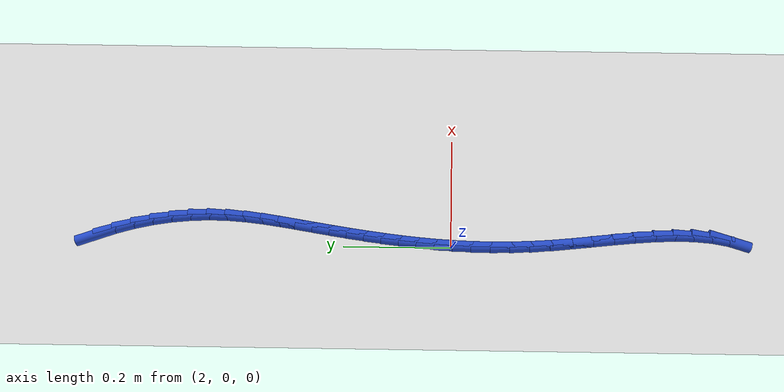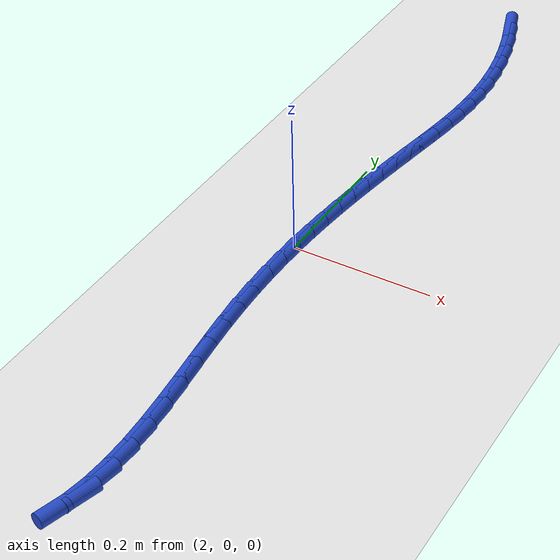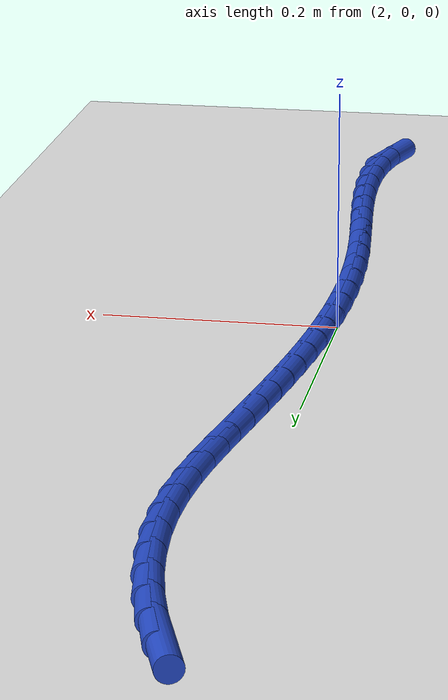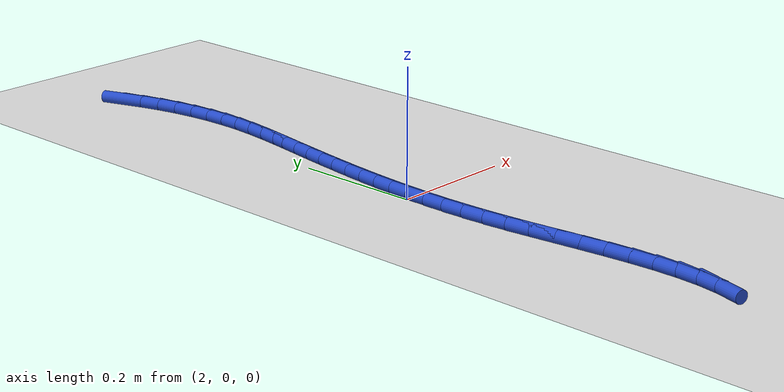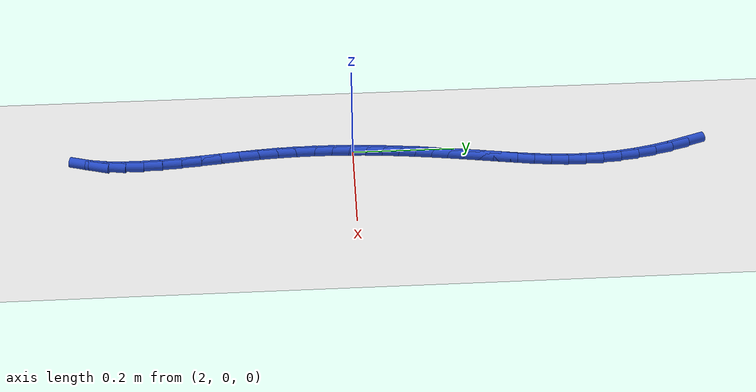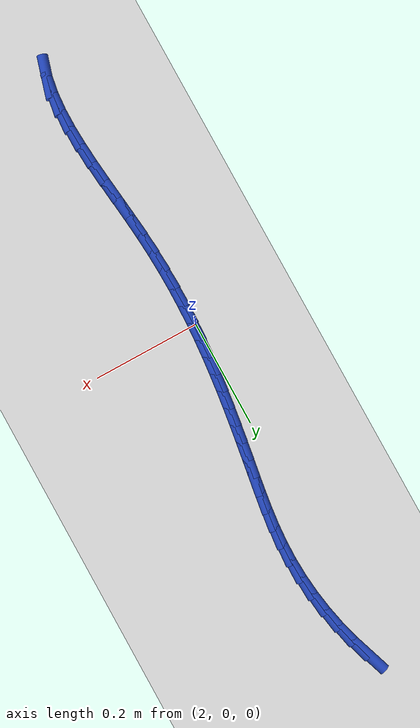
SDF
<sdf version="1.6">
 <world name="default">
  <model name="ground_plane">
   <static>1</static>
   <link name="link">
    <collision name="collision">
     <geometry><plane><normal>0 0 1</normal><size>100 100</size></plane></geometry>
     <surface><friction><ode><mu>100</mu><mu2>50</mu2></ode></friction></surface>
    </collision>
    <visual name="visual">
     <cast_shadows>0</cast_shadows>
     <geometry><plane><normal>0 0 1</normal><size>100 100</size></plane></geometry>
     <material>
      <script><uri>file://media/materials/scripts/gazebo.material</uri><name>Gazebo/WhiteGlow</name></script>
     </material>
    </visual>
   </link>
  </model>
  <model name="line">
   <link name="link_88">
    <pose>2.0164221286010906 0.6550018947222265 0.01 0 1.57 -1.240468622106489</pose>
    <collision name="collision">
     <geometry><cylinder><radius>0.01</radius><length>0.08</length></cylinder></geometry>
    </collision>
    <visual name="visual">
     <material>
      <script><name>Gazebo/Blue</name><uri>file://media/materials/scripts/gazebo.material</uri></script>
     </material>
     <geometry><cylinder><radius>0.01</radius><length>0.08</length></cylinder></geometry>
    </visual>
   </link>
   <link name="link_89">
    <pose>2.0278985567098724 0.6215322904564355 0.01 0 1.57 -1.2999223944673408</pose>
    <collision name="collision">
     <geometry><cylinder><radius>0.01</radius><length>0.08</length></cylinder></geometry>
    </collision>
    <visual name="visual">
     <material>
      <script><name>Gazebo/Blue</name><uri>file://media/materials/scripts/gazebo.material</uri></script>
     </material>
     <geometry><cylinder><radius>0.01</radius><length>0.08</length></cylinder></geometry>
    </visual>
   </link>
   <link name="link_90">
    <pose>2.0374064771883704 0.5872940957433821 0.01 0 1.57 -1.3575590052933633</pose>
    <collision name="collision">
     <geometry><cylinder><radius>0.01</radius><length>0.08</length></cylinder></geometry>
    </collision>
    <visual name="visual">
     <material>
      <script><name>Gazebo/Blue</name><uri>file://media/materials/scripts/gazebo.material</uri></script>
     </material>
     <geometry><cylinder><radius>0.01</radius><length>0.08</length></cylinder></geometry>
    </visual>
   </link>
   <link name="link_91">
    <pose>2.0449311382982183 0.5525428399043462 0.01 0 1.57 -1.4142238051014469</pose>
    <collision name="collision">
     <geometry><cylinder><radius>0.01</radius><length>0.08</length></cylinder></geometry>
    </collision>
    <visual name="visual">
     <material>
      <script><name>Gazebo/Blue</name><uri>file://media/materials/scripts/gazebo.material</uri></script>
     </material>
     <geometry><cylinder><radius>0.01</radius><length>0.08</length></cylinder></geometry>
    </visual>
   </link>
   <link name="link_92">
    <pose>2.050457788301049 0.5175340522606072 0.01 0 1.57 -1.4707654753501485</pose>
    <collision name="collision">
     <geometry><cylinder><radius>0.01</radius><length>0.08</length></cylinder></geometry>
    </collision>
    <visual name="visual">
     <material>
      <script><name>Gazebo/Blue</name><uri>file://media/materials/scripts/gazebo.material</uri></script>
     </material>
     <geometry><cylinder><radius>0.01</radius><length>0.08</length></cylinder></geometry>
    </visual>
   </link>
   <link name="link_93">
    <pose>2.0539716754584987 0.4825232621334464 0.01 0 1.57 -1.5280579942136943</pose>
    <collision name="collision">
     <geometry><cylinder><radius>0.01</radius><length>0.08</length></cylinder></geometry>
    </collision>
    <visual name="visual">
     <material>
      <script><name>Gazebo/Blue</name><uri>file://media/materials/scripts/gazebo.material</uri></script>
     </material>
     <geometry><cylinder><radius>0.01</radius><length>0.08</length></cylinder></geometry>
    </visual>
   </link>
   <link name="link_94">
    <pose>2.0554580480321984 0.4477659988441429 0.01 0 1.57 1.5550939166584778</pose>
    <collision name="collision">
     <geometry><cylinder><radius>0.01</radius><length>0.08</length></cylinder></geometry>
    </collision>
    <visual name="visual">
     <material>
      <script><name>Gazebo/Blue</name><uri>file://media/materials/scripts/gazebo.material</uri></script>
     </material>
     <geometry><cylinder><radius>0.01</radius><length>0.08</length></cylinder></geometry>
    </visual>
   </link>
   <link name="link_95">
    <pose>2.054920022402867 0.4135049265388052 0.01 0 1.57 1.5022485611600669</pose>
    <collision name="collision">
     <geometry><cylinder><radius>0.01</radius><length>0.08</length></cylinder></geometry>
    </collision>
    <visual name="visual">
     <material>
      <script><name>Gazebo/Blue</name><uri>file://media/materials/scripts/gazebo.material</uri></script>
     </material>
     <geometry><cylinder><radius>0.01</radius><length>0.08</length></cylinder></geometry>
    </visual>
   </link>
   <link name="link_96">
    <pose>2.05260639873639 0.37980581525854273 0.01 0 1.57 1.460945091678728</pose>
    <collision name="collision">
     <geometry><cylinder><radius>0.01</radius><length>0.08</length></cylinder></geometry>
    </collision>
    <visual name="visual">
     <material>
      <script><name>Gazebo/Blue</name><uri>file://media/materials/scripts/gazebo.material</uri></script>
     </material>
     <geometry><cylinder><radius>0.01</radius><length>0.08</length></cylinder></geometry>
    </visual>
   </link>
   <link name="link_97">
    <pose>2.048944597805079 0.3466058269139557 0.01 0 1.57 1.431963610331918</pose>
    <collision name="collision">
     <geometry><cylinder><radius>0.01</radius><length>0.08</length></cylinder></geometry>
    </collision>
    <visual name="visual">
     <material>
      <script><name>Gazebo/Blue</name><uri>file://media/materials/scripts/gazebo.material</uri></script>
     </material>
     <geometry><cylinder><radius>0.01</radius><length>0.08</length></cylinder></geometry>
    </visual>
   </link>
   <link name="link_98">
    <pose>2.04436606713049 0.3138392241270173 0.01 0 1.57 1.4157551066812513</pose>
    <collision name="collision">
     <geometry><cylinder><radius>0.01</radius><length>0.08</length></cylinder></geometry>
    </collision>
    <visual name="visual">
     <material>
      <script><name>Gazebo/Blue</name><uri>file://media/materials/scripts/gazebo.material</uri></script>
     </material>
     <geometry><cylinder><radius>0.01</radius><length>0.08</length></cylinder></geometry>
    </visual>
   </link>
   <link name="link_99">
    <pose>2.0393022542341797 0.28144026951970197 0.01 0 1.57 1.4122398564493626</pose>
    <collision name="collision">
     <geometry><cylinder><radius>0.01</radius><length>0.08</length></cylinder></geometry>
    </collision>
    <visual name="visual">
     <material>
      <script><name>Gazebo/Blue</name><uri>file://media/materials/scripts/gazebo.material</uri></script>
     </material>
     <geometry><cylinder><radius>0.01</radius><length>0.08</length></cylinder></geometry>
    </visual>
   </link>
   <link name="link_100">
    <pose>2.034169778100562 0.24934196757314805 0.01 0 1.57 1.4157452389490492</pose>
    <collision name="collision">
     <geometry><cylinder><radius>0.01</radius><length>0.08</length></cylinder></geometry>
    </collision>
    <visual name="visual">
     <material>
      <script><name>Gazebo/Blue</name><uri>file://media/materials/scripts/gazebo.material</uri></script>
     </material>
     <geometry><cylinder><radius>0.01</radius><length>0.08</length></cylinder></geometry>
    </visual>
   </link>
   <link name="link_101">
    <pose>2.0291865176729136 0.21746046048741455 0.01 0 1.57 1.4220901784178952</pose>
    <collision name="collision">
     <geometry><cylinder><radius>0.01</radius><length>0.08</length></cylinder></geometry>
    </collision>
    <visual name="visual">
     <material>
      <script><name>Gazebo/Blue</name><uri>file://media/materials/scripts/gazebo.material</uri></script>
     </material>
     <geometry><cylinder><radius>0.01</radius><length>0.08</length></cylinder></geometry>
    </visual>
   </link>
   <link name="link_102">
    <pose>2.024428394247734 0.1856998459358138 0.01 0 1.57 1.4311716891921056</pose>
    <collision name="collision">
     <geometry><cylinder><radius>0.01</radius><length>0.08</length></cylinder></geometry>
    </collision>
    <visual name="visual">
     <material>
      <script><name>Gazebo/Blue</name><uri>file://media/materials/scripts/gazebo.material</uri></script>
     </material>
     <geometry><cylinder><radius>0.01</radius><length>0.08</length></cylinder></geometry>
    </visual>
   </link>
   <link name="link_103">
    <pose>2.019968261634277 0.1539639613278879 0.01 0 1.57 1.4429333431128455</pose>
    <collision name="collision">
     <geometry><cylinder><radius>0.01</radius><length>0.08</length></cylinder></geometry>
    </collision>
    <visual name="visual">
     <material>
      <script><name>Gazebo/Blue</name><uri>file://media/materials/scripts/gazebo.material</uri></script>
     </material>
     <geometry><cylinder><radius>0.01</radius><length>0.08</length></cylinder></geometry>
    </visual>
   </link>
   <link name="link_104">
    <pose>2.0158789736417977 0.12215664407317951 0.01 0 1.57 1.4572724806549489</pose>
    <collision name="collision">
     <geometry><cylinder><radius>0.01</radius><length>0.08</length></cylinder></geometry>
    </collision>
    <visual name="visual">
     <material>
      <script><name>Gazebo/Blue</name><uri>file://media/materials/scripts/gazebo.material</uri></script>
     </material>
     <geometry><cylinder><radius>0.01</radius><length>0.08</length></cylinder></geometry>
    </visual>
   </link>
   <link name="link_105">
    <pose>2.01223338407955 0.09018173158123134 0.01 0 1.57 1.4740408803067306</pose>
    <collision name="collision">
     <geometry><cylinder><radius>0.01</radius><length>0.08</length></cylinder></geometry>
    </collision>
    <visual name="visual">
     <material>
      <script><name>Gazebo/Blue</name><uri>file://media/materials/scripts/gazebo.material</uri></script>
     </material>
     <geometry><cylinder><radius>0.01</radius><length>0.08</length></cylinder></geometry>
    </visual>
   </link>
   <link name="link_106">
    <pose>2.0091043467567866 0.057943061261585174 0.01 0 1.57 1.4930472014969898</pose>
    <collision name="collision">
     <geometry><cylinder><radius>0.01</radius><length>0.08</length></cylinder></geometry>
    </collision>
    <visual name="visual">
     <material>
      <script><name>Gazebo/Blue</name><uri>file://media/materials/scripts/gazebo.material</uri></script>
     </material>
     <geometry><cylinder><radius>0.01</radius><length>0.08</length></cylinder></geometry>
    </visual>
   </link>
   <link name="link_107">
    <pose>2.0065647154827624 0.025344470523785117 0.01 0 1.57 1.514061334747056</pose>
    <collision name="collision">
     <geometry><cylinder><radius>0.01</radius><length>0.08</length></cylinder></geometry>
    </collision>
    <visual name="visual">
     <material>
      <script><name>Gazebo/Blue</name><uri>file://media/materials/scripts/gazebo.material</uri></script>
     </material>
     <geometry><cylinder><radius>0.01</radius><length>0.08</length></cylinder></geometry>
    </visual>
   </link>
   <link name="link_108">
    <pose>2.0046873440667317 -0.007710203222626985 0.01 0 1.57 1.536820639155027</pose>
    <collision name="collision">
     <geometry><cylinder><radius>0.01</radius><length>0.08</length></cylinder></geometry>
    </collision>
    <visual name="visual">
     <material>
      <script><name>Gazebo/Blue</name><uri>file://media/materials/scripts/gazebo.material</uri></script>
     </material>
     <geometry><cylinder><radius>0.01</radius><length>0.08</length></cylinder></geometry>
    </visual>
   </link>
   <link name="link_109">
    <pose>2.0035450863179483 -0.04131712256810847 0.01 0 1.57 1.5610378546088353</pose>
    <collision name="collision">
     <geometry><cylinder><radius>0.01</radius><length>0.08</length></cylinder></geometry>
    </collision>
    <visual name="visual">
     <material>
      <script><name>Gazebo/Blue</name><uri>file://media/materials/scripts/gazebo.material</uri></script>
     </material>
     <geometry><cylinder><radius>0.01</radius><length>0.08</length></cylinder></geometry>
    </visual>
   </link>
   <link name="link_110">
    <pose>2.003210796045666 -0.07557245010311676 0.01 0 1.57 -1.55518237860795</pose>
    <collision name="collision">
     <geometry><cylinder><radius>0.01</radius><length>0.08</length></cylinder></geometry>
    </collision>
    <visual name="visual">
     <material>
      <script><name>Gazebo/Blue</name><uri>file://media/materials/scripts/gazebo.material</uri></script>
     </material>
     <geometry><cylinder><radius>0.01</radius><length>0.08</length></cylinder></geometry>
    </visual>
   </link>
   <link name="link_111">
    <pose>2.0037573270591382 -0.11057234841810921 0.01 0 1.57 -1.528963055328259</pose>
    <collision name="collision">
     <geometry><cylinder><radius>0.01</radius><length>0.08</length></cylinder></geometry>
    </collision>
    <visual name="visual">
     <material>
      <script><name>Gazebo/Blue</name><uri>file://media/materials/scripts/gazebo.material</uri></script>
     </material>
     <geometry><cylinder><radius>0.01</radius><length>0.08</length></cylinder></geometry>
    </visual>
   </link>
   <link name="link_112">
    <pose>2.00525753316762 -0.14641298010354412 0.01 0 1.57 -1.502200885883355</pose>
    <collision name="collision">
     <geometry><cylinder><radius>0.01</radius><length>0.08</length></cylinder></geometry>
    </collision>
    <visual name="visual">
     <material>
      <script><name>Gazebo/Blue</name><uri>file://media/materials/scripts/gazebo.material</uri></script>
     </material>
     <geometry><cylinder><radius>0.01</radius><length>0.08</length></cylinder></geometry>
    </visual>
   </link>
   <link name="link_113">
    <pose>2.007784268180365 -0.18319050774987716 0.01 0 1.57 -1.4772981516980128</pose>
    <collision name="collision">
     <geometry><cylinder><radius>0.01</radius><length>0.08</length></cylinder></geometry>
    </collision>
    <visual name="visual">
     <material>
      <script><name>Gazebo/Blue</name><uri>file://media/materials/scripts/gazebo.material</uri></script>
     </material>
     <geometry><cylinder><radius>0.01</radius><length>0.08</length></cylinder></geometry>
    </visual>
   </link>
   <link name="link_114">
    <pose>2.0113227591802003 -0.22092572479354114 0.01 0 1.57 -1.4629395047190634</pose>
    <collision name="collision">
     <geometry><cylinder><radius>0.01</radius><length>0.08</length></cylinder></geometry>
    </collision>
    <visual name="visual">
     <material>
      <script><name>Gazebo/Blue</name><uri>file://media/materials/scripts/gazebo.material</uri></script>
     </material>
     <geometry><cylinder><radius>0.01</radius><length>0.08</length></cylinder></geometry>
    </visual>
   </link>
   <link name="link_115">
    <pose>2.0154792698229578 -0.2593134721441082 0.01 0 1.57 -1.4605415070191503</pose>
    <collision name="collision">
     <geometry><cylinder><radius>0.01</radius><length>0.08</length></cylinder></geometry>
    </collision>
    <visual name="visual">
     <material>
      <script><name>Gazebo/Blue</name><uri>file://media/materials/scripts/gazebo.material</uri></script>
     </material>
     <geometry><cylinder><radius>0.01</radius><length>0.08</length></cylinder></geometry>
    </visual>
   </link>
   <link name="link_116">
    <pose>2.019757640549873 -0.2979604948601318 0.01 0 1.57 -1.469771358022803</pose>
    <collision name="collision">
     <geometry><cylinder><radius>0.01</radius><length>0.08</length></cylinder></geometry>
    </collision>
    <visual name="visual">
     <material>
      <script><name>Gazebo/Blue</name><uri>file://media/materials/scripts/gazebo.material</uri></script>
     </material>
     <geometry><cylinder><radius>0.01</radius><length>0.08</length></cylinder></geometry>
    </visual>
   </link>
   <link name="link_117">
    <pose>2.023661710133513 -0.33647353656491413 0.01 0 1.57 -1.4911038597758774</pose>
    <collision name="collision">
     <geometry><cylinder><radius>0.01</radius><length>0.08</length></cylinder></geometry>
    </collision>
    <visual name="visual">
     <material>
      <script><name>Gazebo/Blue</name><uri>file://media/materials/scripts/gazebo.material</uri></script>
     </material>
     <geometry><cylinder><radius>0.01</radius><length>0.08</length></cylinder></geometry>
    </visual>
   </link>
   <link name="link_118">
    <pose>2.026695317346441 -0.3744593408817564 0.01 0 1.57 -1.5258523879288561</pose>
    <collision name="collision">
     <geometry><cylinder><radius>0.01</radius><length>0.08</length></cylinder></geometry>
    </collision>
    <visual name="visual">
     <material>
      <script><name>Gazebo/Blue</name><uri>file://media/materials/scripts/gazebo.material</uri></script>
     </material>
     <geometry><cylinder><radius>0.01</radius><length>0.08</length></cylinder></geometry>
    </visual>
   </link>
   <link name="link_119">
    <pose>2.028362300961224 -0.4115246514339619 0.01 0 1.57 1.5653196636524775</pose>
    <collision name="collision">
     <geometry><cylinder><radius>0.01</radius><length>0.08</length></cylinder></geometry>
    </collision>
    <visual name="visual">
     <material>
      <script><name>Gazebo/Blue</name><uri>file://media/materials/scripts/gazebo.material</uri></script>
     </material>
     <geometry><cylinder><radius>0.01</radius><length>0.08</length></cylinder></geometry>
    </visual>
   </link>
   <link name="link_120">
    <pose>2.028166499750424 -0.4472762118448299 0.01 0 1.57 1.4958954195186167</pose>
    <collision name="collision">
     <geometry><cylinder><radius>0.01</radius><length>0.08</length></cylinder></geometry>
    </collision>
    <visual name="visual">
     <material>
      <script><name>Gazebo/Blue</name><uri>file://media/materials/scripts/gazebo.material</uri></script>
     </material>
     <geometry><cylinder><radius>0.01</radius><length>0.08</length></cylinder></geometry>
    </visual>
   </link>
   <link name="link_121">
    <pose>2.0256117524866086 -0.48132076573766397 0.01 0 1.57 1.40303527577874</pose>
    <collision name="collision">
     <geometry><cylinder><radius>0.01</radius><length>0.08</length></cylinder></geometry>
    </collision>
    <visual name="visual">
     <material>
      <script><name>Gazebo/Blue</name><uri>file://media/materials/scripts/gazebo.material</uri></script>
     </material>
     <geometry><cylinder><radius>0.01</radius><length>0.08</length></cylinder></geometry>
    </visual>
   </link>
   <link name="link_122">
    <pose>2.020201897942341 -0.5132650567357652 0.01 0 1.57 1.2816497066687171</pose>
    <collision name="collision">
     <geometry><cylinder><radius>0.01</radius><length>0.08</length></cylinder></geometry>
    </collision>
    <visual name="visual">
     <material>
      <script><name>Gazebo/Blue</name><uri>file://media/materials/scripts/gazebo.material</uri></script>
     </material>
     <geometry><cylinder><radius>0.01</radius><length>0.08</length></cylinder></geometry>
    </visual>
   </link>
  </model>
 </world>
</sdf>
